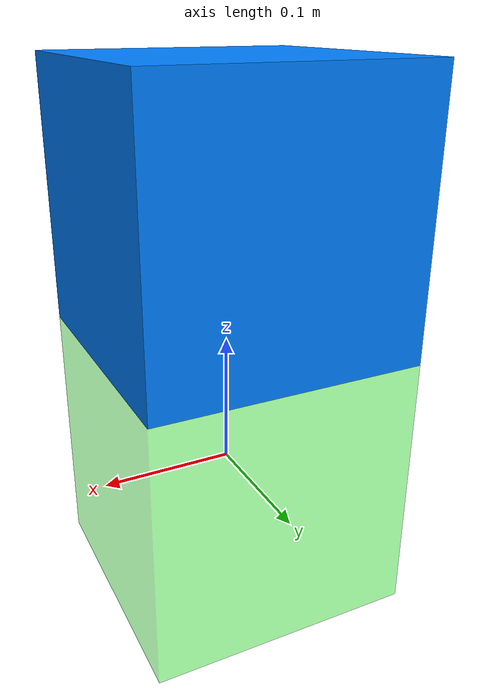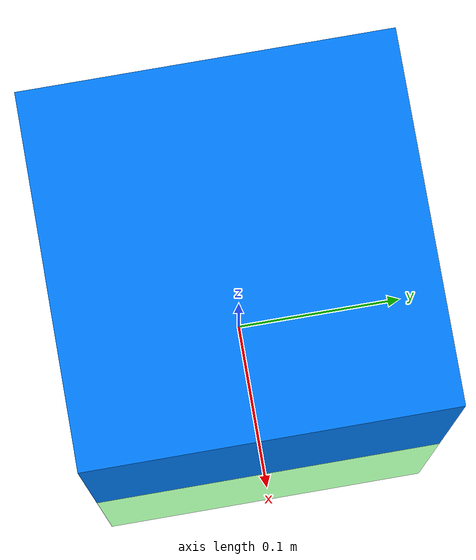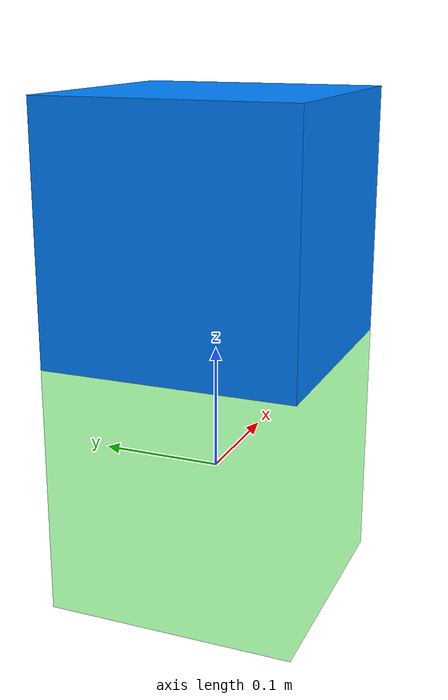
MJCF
<mujoco model="floating_cube">
    <!-- Include default options for visualization -->
    <visual>
        <map znear="0.01" zfar="50" />
    </visual>

    <option gravity="0 0 0" integrator="RK4" timestep="0.002" />

    <!-- Define a floating cube body -->
    <worldbody>
        <body name="floating_cube" pos="0 0 0.2" quat="0.707 0.707 0 0">
            <!-- Add the cube geometry -->
            <joint name="free_joint" type="free" />
            <geom name="cube_geom" type="box" size="0.1 0.1 0.1" rgba="0 0.5 1 1" />
        </body>

        <body pos="0 0 0" name="target" gravcomp="1">
            <joint name="target_joint" type="free" />
            <geom type = "box" size = "0.1 0.1 0.1" rgba = "0 1 0 0.4" mass="1" contype = "4" conaffinity = "4" />
        </body>

    </worldbody>

    <!-- Actuators for the rotational axes -->
    <actuator>
        <motor name="roll_motor" joint="free_joint" gear="0 0 0 1 0 0" />
        <motor name="pitch_motor" joint="free_joint" gear="0 0 0 0 1 0" />
        <motor name="yaw_motor" joint="free_joint" gear="0 0 0 0 0 1" />
    </actuator>
</mujoco>
